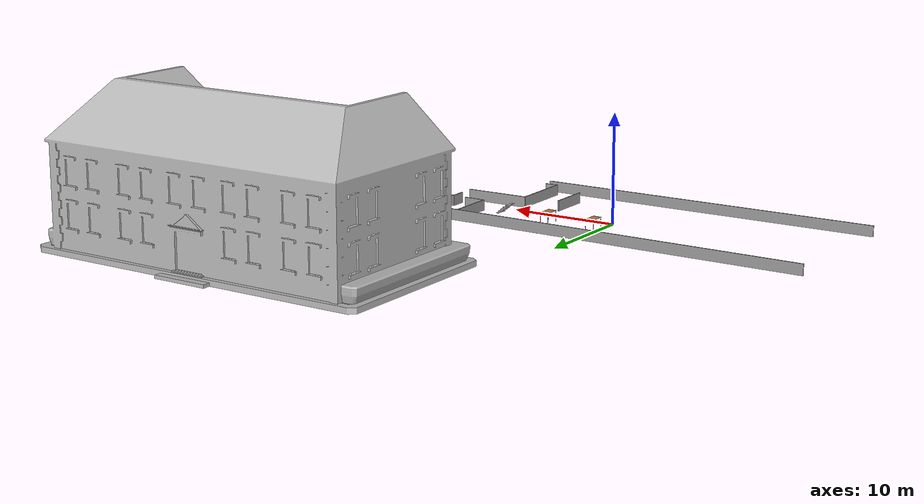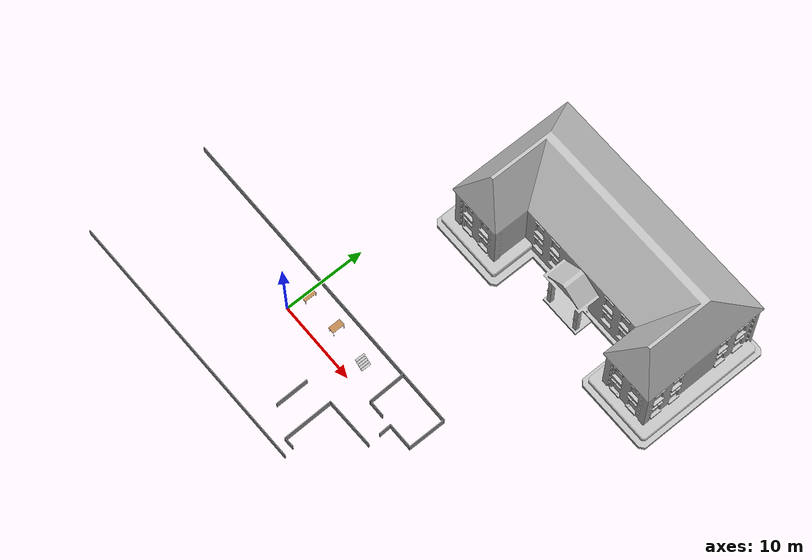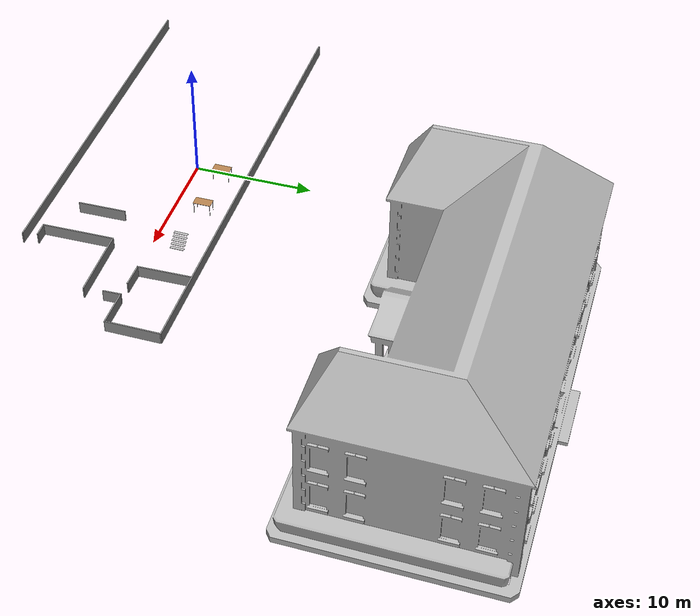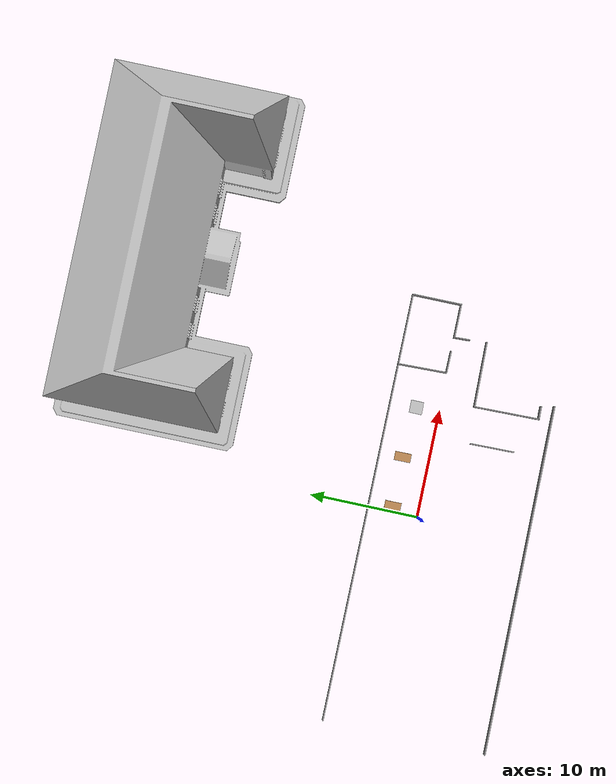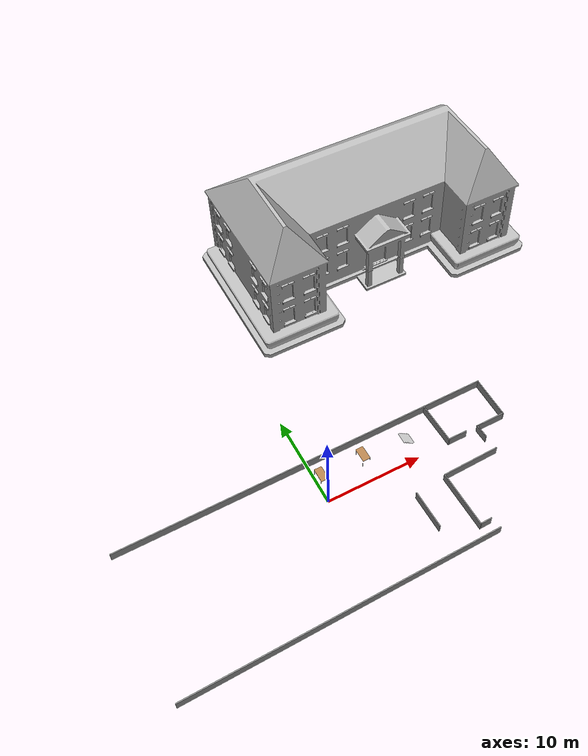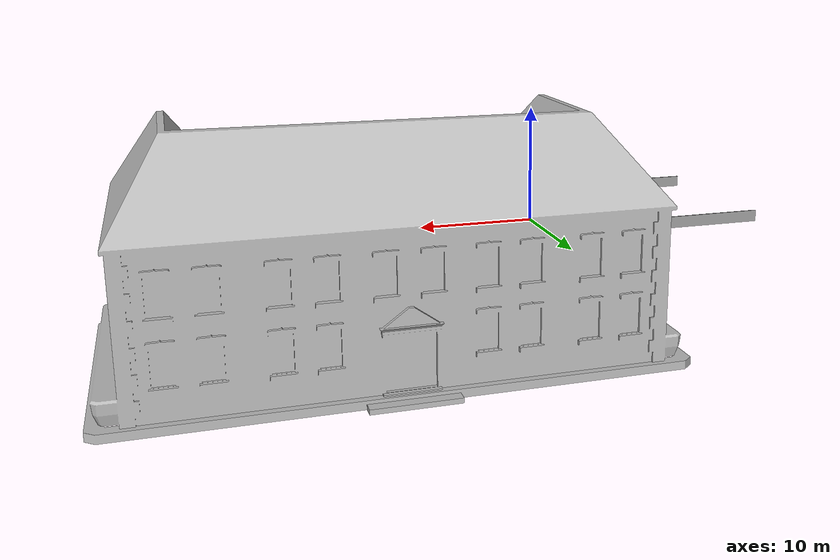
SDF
<sdf version="1.6">
 <model name="big_project_room">
  <link name="link">
   <pose>14.0349 -2.99213 2.5e-05 0 -0 0.019261</pose>
   <inertial>
    <mass>0.0501598</mass>
    <inertia>
     <ixx>0.00418042</ixx>
     <ixy>0</ixy>
     <ixz>0</ixz>
     <iyy>0.104263</iyy>
     <iyz>0</iyz>
     <izz>0.100083</izz>
    </inertia>
   </inertial>
   <visual name="visual">
    <geometry><box><size>6.096 0.10251 1</size></box></geometry>
    <material>
     <script><name>Gazebo/Grey</name><uri>file://media/materials/scripts/gazebo.material</uri></script>
     <shader type="pixel"><normal_map>__default__</normal_map></shader>
     <ambient>1 1 1 1</ambient>
     <diffuse>0.7 0.7 0.7 1</diffuse>
     <specular>0.01 0.01 0.01 1</specular>
     <emissive>0 0 0 1</emissive>
    </material>
   </visual>
   <collision name="collision">
    <geometry><box><size>6.096 0.10251 1</size></box></geometry>
    <surface>
     <friction>
      <ode><mu>1</mu><mu2>1</mu2><fdir1>0 0 0</fdir1><slip1>0</slip1><slip2>0</slip2></ode>
      <torsional>
       <coefficient>1</coefficient>
       <patch_radius>0</patch_radius>
       <surface_radius>0</surface_radius>
       <use_patch_radius>1</use_patch_radius>
       <ode><slip>0</slip></ode>
      </torsional>
     </friction>
     <bounce><restitution_coefficient>0</restitution_coefficient><threshold>1e+06</threshold></bounce>
     <contact>
      <collide_without_contact>0</collide_without_contact>
      <collide_without_contact_bitmask>1</collide_without_contact_bitmask>
      <collide_bitmask>1</collide_bitmask>
      <ode>
       <soft_cfm>0</soft_cfm>
       <soft_erp>0.2</soft_erp>
       <kp>1e+13</kp>
       <kd>1</kd>
       <max_vel>0.01</max_vel>
       <min_depth>0</min_depth>
      </ode>
      <bullet>
       <split_impulse>1</split_impulse>
       <split_impulse_penetration_threshold>-0.01</split_impulse_penetration_threshold>
       <soft_cfm>0</soft_cfm>
       <soft_erp>0.2</soft_erp>
       <kp>1e+13</kp>
       <kd>1</kd>
      </bullet>
     </contact>
    </surface>
   </collision>
  </link>
  <link name="link_0_clone">
   <pose>19.9441 2.29599 -0.01875 0.00066 0.00066 -1.57077</pose>
   <inertial>
    <mass>1</mass>
    <inertia>
     <ixx>0.166667</ixx>
     <ixy>0</ixy>
     <ixz>0</ixz>
     <iyy>0.166667</iyy>
     <iyz>0</iyz>
     <izz>0.166667</izz>
    </inertia>
   </inertial>
   <visual name="visual">
    <geometry><box><size>4.527 0.1 1</size></box></geometry>
    <material>
     <lighting>1</lighting>
     <script><uri>file://media/materials/scripts/gazebo.material</uri><name>Gazebo/Grey</name></script>
     <shader type="pixel"><normal_map>__default__</normal_map></shader>
     <ambient>1 1 1 1</ambient>
     <diffuse>0.7 0.7 0.7 1</diffuse>
     <specular>0.01 0.01 0.01 1</specular>
     <emissive>0 0 0 1</emissive>
    </material>
   </visual>
   <collision name="collision">
    <geometry><box><size>4.572 0.1 1</size></box></geometry>
    <surface>
     <friction>
      <ode><mu>1</mu><mu2>1</mu2><fdir1>0 0 0</fdir1><slip1>0</slip1><slip2>0</slip2></ode>
      <torsional>
       <coefficient>1</coefficient>
       <patch_radius>0</patch_radius>
       <surface_radius>0</surface_radius>
       <use_patch_radius>1</use_patch_radius>
       <ode><slip>0</slip></ode>
      </torsional>
     </friction>
     <bounce><restitution_coefficient>0</restitution_coefficient><threshold>1e+06</threshold></bounce>
     <contact>
      <collide_without_contact>0</collide_without_contact>
      <collide_without_contact_bitmask>1</collide_without_contact_bitmask>
      <collide_bitmask>1</collide_bitmask>
      <ode>
       <soft_cfm>0</soft_cfm>
       <soft_erp>0.2</soft_erp>
       <kp>1e+13</kp>
       <kd>1</kd>
       <max_vel>0.01</max_vel>
       <min_depth>0</min_depth>
      </ode>
      <bullet>
       <split_impulse>1</split_impulse>
       <split_impulse_penetration_threshold>-0.01</split_impulse_penetration_threshold>
       <soft_cfm>0</soft_cfm>
       <soft_erp>0.2</soft_erp>
       <kp>1e+13</kp>
       <kd>1</kd>
      </bullet>
     </contact>
    </surface>
   </collision>
  </link>
  <link name="link_0_clone_clone_clone_0">
   <pose>14.5732 0.114647 0.004935 -0.000664 0.000656 3.13495</pose>
   <inertial>
    <mass>1</mass>
    <inertia>
     <ixx>0.166667</ixx>
     <ixy>0</ixy>
     <ixz>0</ixz>
     <iyy>0.166667</iyy>
     <iyz>0</iyz>
     <izz>0.166667</izz>
    </inertia>
   </inertial>
   <visual name="visual">
    <geometry><box><size>2 0.1 1</size></box></geometry>
    <material>
     <lighting>1</lighting>
     <script><uri>file://media/materials/scripts/gazebo.material</uri><name>Gazebo/Grey</name></script>
     <shader type="pixel"><normal_map>__default__</normal_map></shader>
     <ambient>1 1 1 1</ambient>
     <diffuse>0.7 0.7 0.7 1</diffuse>
     <specular>0.01 0.01 0.01 1</specular>
     <emissive>0 0 0 1</emissive>
    </material>
   </visual>
   <collision name="collision">
    <geometry><box><size>2 0.1 1</size></box></geometry>
    <surface>
     <friction>
      <ode><mu>1</mu><mu2>1</mu2><fdir1>0 0 0</fdir1><slip1>0</slip1><slip2>0</slip2></ode>
      <torsional>
       <coefficient>1</coefficient>
       <patch_radius>0</patch_radius>
       <surface_radius>0</surface_radius>
       <use_patch_radius>1</use_patch_radius>
       <ode><slip>0</slip></ode>
      </torsional>
     </friction>
     <bounce><restitution_coefficient>0</restitution_coefficient><threshold>1e+06</threshold></bounce>
     <contact>
      <collide_without_contact>0</collide_without_contact>
      <collide_without_contact_bitmask>1</collide_without_contact_bitmask>
      <collide_bitmask>1</collide_bitmask>
      <ode>
       <soft_cfm>0</soft_cfm>
       <soft_erp>0.2</soft_erp>
       <kp>1e+13</kp>
       <kd>1</kd>
       <max_vel>0.01</max_vel>
       <min_depth>0</min_depth>
      </ode>
      <bullet>
       <split_impulse>1</split_impulse>
       <split_impulse_penetration_threshold>-0.01</split_impulse_penetration_threshold>
       <soft_cfm>0</soft_cfm>
       <soft_erp>0.2</soft_erp>
       <kp>1e+13</kp>
       <kd>1</kd>
      </bullet>
     </contact>
    </surface>
   </collision>
  </link>
  <link name="link_0_clone_clone_clone_clone_0">
   <pose>16.8828 -0.632141 0.009219 -0.000709 -0.001294 1.60824</pose>
   <inertial>
    <mass>1</mass>
    <inertia>
     <ixx>0.166667</ixx>
     <ixy>0</ixy>
     <ixz>0</ixz>
     <iyy>0.166667</iyy>
     <iyz>0</iyz>
     <izz>0.166667</izz>
    </inertia>
   </inertial>
   <visual name="visual">
    <geometry><box><size>1.524 0.1 1</size></box></geometry>
    <material>
     <lighting>1</lighting>
     <script><uri>file://media/materials/scripts/gazebo.material</uri><name>Gazebo/Grey</name></script>
     <shader type="pixel"><normal_map>__default__</normal_map></shader>
     <ambient>1 1 1 1</ambient>
     <diffuse>0.7 0.7 0.7 1</diffuse>
     <specular>0.01 0.01 0.01 1</specular>
     <emissive>0 0 0 1</emissive>
    </material>
   </visual>
   <collision name="collision">
    <geometry><box><size>1.524 0.1 1</size></box></geometry>
    <surface>
     <friction>
      <ode><mu>1</mu><mu2>1</mu2><fdir1>0 0 0</fdir1><slip1>0</slip1><slip2>0</slip2></ode>
      <torsional>
       <coefficient>1</coefficient>
       <patch_radius>0</patch_radius>
       <surface_radius>0</surface_radius>
       <use_patch_radius>1</use_patch_radius>
       <ode><slip>0</slip></ode>
      </torsional>
     </friction>
     <bounce><restitution_coefficient>0</restitution_coefficient><threshold>1e+06</threshold></bounce>
     <contact>
      <collide_without_contact>0</collide_without_contact>
      <collide_without_contact_bitmask>1</collide_without_contact_bitmask>
      <collide_bitmask>1</collide_bitmask>
      <ode>
       <soft_cfm>0</soft_cfm>
       <soft_erp>0.2</soft_erp>
       <kp>1e+13</kp>
       <kd>1</kd>
       <max_vel>0.01</max_vel>
       <min_depth>0</min_depth>
      </ode>
      <bullet>
       <split_impulse>1</split_impulse>
       <split_impulse_penetration_threshold>-0.01</split_impulse_penetration_threshold>
       <soft_cfm>0</soft_cfm>
       <soft_erp>0.2</soft_erp>
       <kp>1e+13</kp>
       <kd>1</kd>
      </bullet>
     </contact>
    </surface>
   </collision>
  </link>
  <link name="link_0_clone_clone_clone_clone_1">
   <pose>18.3965 0.082315 0.010039 -0.001319 0.000662 -3.14011</pose>
   <inertial>
    <mass>1</mass>
    <inertia>
     <ixx>0.166667</ixx>
     <ixy>0</ixy>
     <ixz>0</ixz>
     <iyy>0.166667</iyy>
     <iyz>0</iyz>
     <izz>0.166667</izz>
    </inertia>
   </inertial>
   <visual name="visual">
    <geometry><box><size>3 0.1 1</size></box></geometry>
    <material>
     <lighting>1</lighting>
     <script><uri>file://media/materials/scripts/gazebo.material</uri><name>Gazebo/Grey</name></script>
     <shader type="pixel"><normal_map>__default__</normal_map></shader>
     <ambient>1 1 1 1</ambient>
     <diffuse>0.7 0.7 0.7 1</diffuse>
     <specular>0.01 0.01 0.01 1</specular>
     <emissive>0 0 0 1</emissive>
    </material>
   </visual>
   <collision name="collision">
    <geometry><box><size>3 0.1 1</size></box></geometry>
    <surface>
     <friction>
      <ode><mu>1</mu><mu2>1</mu2><fdir1>0 0 0</fdir1><slip1>0</slip1><slip2>0</slip2></ode>
      <torsional>
       <coefficient>1</coefficient>
       <patch_radius>0</patch_radius>
       <surface_radius>0</surface_radius>
       <use_patch_radius>1</use_patch_radius>
       <ode><slip>0</slip></ode>
      </torsional>
     </friction>
     <bounce><restitution_coefficient>0</restitution_coefficient><threshold>1e+06</threshold></bounce>
     <contact>
      <collide_without_contact>0</collide_without_contact>
      <collide_without_contact_bitmask>1</collide_without_contact_bitmask>
      <collide_bitmask>1</collide_bitmask>
      <ode>
       <soft_cfm>0</soft_cfm>
       <soft_erp>0.2</soft_erp>
       <kp>1e+13</kp>
       <kd>1</kd>
       <max_vel>0.01</max_vel>
       <min_depth>0</min_depth>
      </ode>
      <bullet>
       <split_impulse>1</split_impulse>
       <split_impulse_penetration_threshold>-0.01</split_impulse_penetration_threshold>
       <soft_cfm>0</soft_cfm>
       <soft_erp>0.2</soft_erp>
       <kp>1e+13</kp>
       <kd>1</kd>
      </bullet>
     </contact>
    </surface>
   </collision>
  </link>
  <link name="link_clone">
   <pose>-0.007377 4.60801 0.003041 0.00066 -0 0</pose>
   <inertial>
    <mass>0.0501598</mass>
    <inertia>
     <ixx>0.00418042</ixx>
     <ixy>0</ixy>
     <ixz>0</ixz>
     <iyy>0.104263</iyy>
     <iyz>0</iyz>
     <izz>0.100083</izz>
    </inertia>
   </inertial>
   <visual name="visual">
    <geometry><box><size>40 0.10251 1</size></box></geometry>
    <material>
     <script><name>Gazebo/Grey</name><uri>file://media/materials/scripts/gazebo.material</uri></script>
     <shader type="pixel"><normal_map>__default__</normal_map></shader>
     <ambient>1 1 1 1</ambient>
     <diffuse>0.7 0.7 0.7 1</diffuse>
     <specular>0.01 0.01 0.01 1</specular>
     <emissive>0 0 0 1</emissive>
    </material>
   </visual>
   <collision name="collision">
    <geometry><box><size>40 0.10251 1</size></box></geometry>
    <surface>
     <friction>
      <ode><mu>1</mu><mu2>1</mu2><fdir1>0 0 0</fdir1><slip1>0</slip1><slip2>0</slip2></ode>
      <torsional>
       <coefficient>1</coefficient>
       <patch_radius>0</patch_radius>
       <surface_radius>0</surface_radius>
       <use_patch_radius>1</use_patch_radius>
       <ode><slip>0</slip></ode>
      </torsional>
     </friction>
     <bounce><restitution_coefficient>0</restitution_coefficient><threshold>1e+06</threshold></bounce>
     <contact>
      <collide_without_contact>0</collide_without_contact>
      <collide_without_contact_bitmask>1</collide_without_contact_bitmask>
      <collide_bitmask>1</collide_bitmask>
      <ode>
       <soft_cfm>0</soft_cfm>
       <soft_erp>0.2</soft_erp>
       <kp>1e+13</kp>
       <kd>1</kd>
       <max_vel>0.01</max_vel>
       <min_depth>0</min_depth>
      </ode>
      <bullet>
       <split_impulse>1</split_impulse>
       <split_impulse_penetration_threshold>-0.01</split_impulse_penetration_threshold>
       <soft_cfm>0</soft_cfm>
       <soft_erp>0.2</soft_erp>
       <kp>1e+13</kp>
       <kd>1</kd>
      </bullet>
     </contact>
    </surface>
   </collision>
  </link>
  <link name="link_clone_0">
   <pose>13.4826 2.33415 0.001565 1.7e-05 0.00066 -1.54442</pose>
   <inertial>
    <mass>0.0373227</mass>
    <inertia>
     <ixx>0.00314291</ixx>
     <ixy>0</ixy>
     <ixz>0</ixz>
     <iyy>0.067101</iyy>
     <iyz>0</iyz>
     <izz>0.0640235</izz>
    </inertia>
   </inertial>
   <visual name="visual">
    <geometry><box><size>4.53589 0.10251 1</size></box></geometry>
    <material>
     <script><name>Gazebo/Grey</name><uri>file://media/materials/scripts/gazebo.material</uri></script>
     <shader type="pixel"><normal_map>__default__</normal_map></shader>
     <ambient>1 1 1 1</ambient>
     <diffuse>0.7 0.7 0.7 1</diffuse>
     <specular>0.01 0.01 0.01 1</specular>
     <emissive>0 0 0 1</emissive>
    </material>
   </visual>
   <collision name="collision">
    <geometry><box><size>4.53589 0.10251 1</size></box></geometry>
    <surface>
     <friction>
      <ode><mu>1</mu><mu2>1</mu2><fdir1>0 0 0</fdir1><slip1>0</slip1><slip2>0</slip2></ode>
      <torsional>
       <coefficient>1</coefficient>
       <patch_radius>0</patch_radius>
       <surface_radius>0</surface_radius>
       <use_patch_radius>1</use_patch_radius>
       <ode><slip>0</slip></ode>
      </torsional>
     </friction>
     <bounce><restitution_coefficient>0</restitution_coefficient><threshold>1e+06</threshold></bounce>
     <contact>
      <collide_without_contact>0</collide_without_contact>
      <collide_without_contact_bitmask>1</collide_without_contact_bitmask>
      <collide_bitmask>1</collide_bitmask>
      <ode>
       <soft_cfm>0</soft_cfm>
       <soft_erp>0.2</soft_erp>
       <kp>1e+13</kp>
       <kd>1</kd>
       <max_vel>0.01</max_vel>
       <min_depth>0</min_depth>
      </ode>
      <bullet>
       <split_impulse>1</split_impulse>
       <split_impulse_penetration_threshold>-0.01</split_impulse_penetration_threshold>
       <soft_cfm>0</soft_cfm>
       <soft_erp>0.2</soft_erp>
       <kp>1e+13</kp>
       <kd>1</kd>
      </bullet>
     </contact>
    </surface>
   </collision>
  </link>
  <link name="link_clone_1">
   <pose>11.064 -6.05479 -0.003971 1.2e-05 0.00066 -1.55284</pose>
   <inertial>
    <mass>0.0501598</mass>
    <inertia>
     <ixx>0.00418042</ixx>
     <ixy>0</ixy>
     <ixz>0</ixz>
     <iyy>0.104263</iyy>
     <iyz>0</iyz>
     <izz>0.100083</izz>
    </inertia>
   </inertial>
   <visual name="visual">
    <geometry><box><size>6.096 0.10251 1</size></box></geometry>
    <material>
     <script><name>Gazebo/Grey</name><uri>file://media/materials/scripts/gazebo.material</uri></script>
     <shader type="pixel"><normal_map>__default__</normal_map></shader>
     <ambient>1 1 1 1</ambient>
     <diffuse>0.7 0.7 0.7 1</diffuse>
     <specular>0.01 0.01 0.01 1</specular>
     <emissive>0 0 0 1</emissive>
    </material>
   </visual>
   <collision name="collision">
    <geometry><box><size>6.096 0.10251 1</size></box></geometry>
    <surface>
     <friction>
      <ode><mu>1</mu><mu2>1</mu2><fdir1>0 0 0</fdir1><slip1>0</slip1><slip2>0</slip2></ode>
      <torsional>
       <coefficient>1</coefficient>
       <patch_radius>0</patch_radius>
       <surface_radius>0</surface_radius>
       <use_patch_radius>1</use_patch_radius>
       <ode><slip>0</slip></ode>
      </torsional>
     </friction>
     <bounce><restitution_coefficient>0</restitution_coefficient><threshold>1e+06</threshold></bounce>
     <contact>
      <collide_without_contact>0</collide_without_contact>
      <collide_without_contact_bitmask>1</collide_without_contact_bitmask>
      <collide_bitmask>1</collide_bitmask>
      <ode>
       <soft_cfm>0</soft_cfm>
       <soft_erp>0.2</soft_erp>
       <kp>1e+13</kp>
       <kd>1</kd>
       <max_vel>0.01</max_vel>
       <min_depth>0</min_depth>
      </ode>
      <bullet>
       <split_impulse>1</split_impulse>
       <split_impulse_penetration_threshold>-0.01</split_impulse_penetration_threshold>
       <soft_cfm>0</soft_cfm>
       <soft_erp>0.2</soft_erp>
       <kp>1e+13</kp>
       <kd>1</kd>
      </bullet>
     </contact>
    </surface>
   </collision>
  </link>
  <link name="link_clone_1_clone">
   <pose>-3.72157 -10.3844 -0.010858 -0.00132 1.3e-05 -3.13177</pose>
   <inertial>
    <mass>0.268169</mass>
    <inertia>
     <ixx>0.0225823</ixx>
     <ixy>0</ixy>
     <ixz>0</ixz>
     <iyy>23.7593</iyy>
     <iyz>0</iyz>
     <izz>23.7372</izz>
    </inertia>
   </inertial>
   <visual name="visual">
    <geometry><box><size>32.5911 0.10251 1</size></box></geometry>
    <material>
     <script><name>Gazebo/Grey</name><uri>file://media/materials/scripts/gazebo.material</uri></script>
     <shader type="pixel"><normal_map>__default__</normal_map></shader>
     <ambient>1 1 1 1</ambient>
     <diffuse>0.7 0.7 0.7 1</diffuse>
     <specular>0.01 0.01 0.01 1</specular>
     <emissive>0 0 0 1</emissive>
    </material>
   </visual>
   <collision name="collision">
    <geometry><box><size>32.5911 0.10251 1</size></box></geometry>
    <surface>
     <friction>
      <ode><mu>1</mu><mu2>1</mu2><fdir1>0 0 0</fdir1><slip1>0</slip1><slip2>0</slip2></ode>
      <torsional>
       <coefficient>1</coefficient>
       <patch_radius>0</patch_radius>
       <surface_radius>0</surface_radius>
       <use_patch_radius>1</use_patch_radius>
       <ode><slip>0</slip></ode>
      </torsional>
     </friction>
     <bounce><restitution_coefficient>0</restitution_coefficient><threshold>1e+06</threshold></bounce>
     <contact>
      <collide_without_contact>0</collide_without_contact>
      <collide_without_contact_bitmask>1</collide_without_contact_bitmask>
      <collide_bitmask>1</collide_bitmask>
      <ode>
       <soft_cfm>0</soft_cfm>
       <soft_erp>0.2</soft_erp>
       <kp>1e+13</kp>
       <kd>1</kd>
       <max_vel>0.01</max_vel>
       <min_depth>0</min_depth>
      </ode>
      <bullet>
       <split_impulse>1</split_impulse>
       <split_impulse_penetration_threshold>-0.01</split_impulse_penetration_threshold>
       <soft_cfm>0</soft_cfm>
       <soft_erp>0.2</soft_erp>
       <kp>1e+13</kp>
       <kd>1</kd>
      </bullet>
     </contact>
    </surface>
   </collision>
  </link>
  <link name="link_clone_1_clone_0">
   <pose>11.726 -9.03721 -0.009925 -0.00132 2.9e-05 -3.11953</pose>
   <inertial>
    <mass>0.00975708</mass>
    <inertia>
     <ixx>0.000821634</ixx>
     <ixy>0</ixy>
     <ixz>0</ixz>
     <iyy>0.00195639</iyy>
     <iyz>0</iyz>
     <izz>0.00115184</izz>
    </inertia>
   </inertial>
   <visual name="visual">
    <geometry><box><size>1.1858 0.10251 1</size></box></geometry>
    <material>
     <script><name>Gazebo/Grey</name><uri>file://media/materials/scripts/gazebo.material</uri></script>
     <shader type="pixel"><normal_map>__default__</normal_map></shader>
     <ambient>1 1 1 1</ambient>
     <diffuse>0.7 0.7 0.7 1</diffuse>
     <specular>0.01 0.01 0.01 1</specular>
     <emissive>0 0 0 1</emissive>
    </material>
   </visual>
   <collision name="collision">
    <geometry><box><size>1.1858 0.10251 1</size></box></geometry>
    <surface>
     <friction>
      <ode><mu>1</mu><mu2>1</mu2><fdir1>0 0 0</fdir1><slip1>0</slip1><slip2>0</slip2></ode>
      <torsional>
       <coefficient>1</coefficient>
       <patch_radius>0</patch_radius>
       <surface_radius>0</surface_radius>
       <use_patch_radius>1</use_patch_radius>
       <ode><slip>0</slip></ode>
      </torsional>
     </friction>
     <bounce><restitution_coefficient>0</restitution_coefficient><threshold>1e+06</threshold></bounce>
     <contact>
      <collide_without_contact>0</collide_without_contact>
      <collide_without_contact_bitmask>1</collide_without_contact_bitmask>
      <collide_bitmask>1</collide_bitmask>
      <ode>
       <soft_cfm>0</soft_cfm>
       <soft_erp>0.2</soft_erp>
       <kp>1e+13</kp>
       <kd>1</kd>
       <max_vel>0.01</max_vel>
       <min_depth>0</min_depth>
      </ode>
      <bullet>
       <split_impulse>1</split_impulse>
       <split_impulse_penetration_threshold>-0.01</split_impulse_penetration_threshold>
       <soft_cfm>0</soft_cfm>
       <soft_erp>0.2</soft_erp>
       <kp>1e+13</kp>
       <kd>1</kd>
      </bullet>
     </contact>
    </surface>
   </collision>
  </link>
  <link name="link_clone_1_clone_2_clone_3">
   <pose>7.65066 -5.4273 -0.006926 3e-05 0.00198 -1.55514</pose>
   <inertial>
    <mass>0.033243</mass>
    <inertia>
     <ixx>0.00279936</ixx>
     <ixy>0</ixy>
     <ixz>0</ixz>
     <iyy>0.047987</iyy>
     <iyz>0</iyz>
     <izz>0.0452459</izz>
    </inertia>
   </inertial>
   <visual name="visual">
    <geometry><box><size>4.04008 0.10251 1</size></box></geometry>
    <material>
     <script><name>Gazebo/Grey</name><uri>file://media/materials/scripts/gazebo.material</uri></script>
     <shader type="pixel"><normal_map>__default__</normal_map></shader>
     <ambient>1 1 1 1</ambient>
     <diffuse>0.7 0.7 0.7 1</diffuse>
     <specular>0.01 0.01 0.01 1</specular>
     <emissive>0 0 0 1</emissive>
    </material>
   </visual>
   <collision name="collision">
    <geometry><box><size>4.04008 0.10251 1</size></box></geometry>
    <surface>
     <friction>
      <ode><mu>1</mu><mu2>1</mu2><fdir1>0 0 0</fdir1><slip1>0</slip1><slip2>0</slip2></ode>
      <torsional>
       <coefficient>1</coefficient>
       <patch_radius>0</patch_radius>
       <surface_radius>0</surface_radius>
       <use_patch_radius>1</use_patch_radius>
       <ode><slip>0</slip></ode>
      </torsional>
     </friction>
     <bounce><restitution_coefficient>0</restitution_coefficient><threshold>1e+06</threshold></bounce>
     <contact>
      <collide_without_contact>0</collide_without_contact>
      <collide_without_contact_bitmask>1</collide_without_contact_bitmask>
      <collide_bitmask>1</collide_bitmask>
      <ode>
       <soft_cfm>0</soft_cfm>
       <soft_erp>0.2</soft_erp>
       <kp>1e+13</kp>
       <kd>1</kd>
       <max_vel>0.01</max_vel>
       <min_depth>0</min_depth>
      </ode>
      <bullet>
       <split_impulse>1</split_impulse>
       <split_impulse_penetration_threshold>-0.01</split_impulse_penetration_threshold>
       <soft_cfm>0</soft_cfm>
       <soft_erp>0.2</soft_erp>
       <kp>1e+13</kp>
       <kd>1</kd>
      </bullet>
     </contact>
    </surface>
   </collision>
  </link>
  <model name="nist_stairs_120">
   <static>1</static>
   <link name="nist_stairs_120_link">
    <collision name="collision">
     <geometry>
      <mesh><uri>model://nist_stairs_120/meshes/nist_stairs_120.dae</uri><scale>1 1 1</scale></mesh>
     </geometry>
    </collision>
    <visual name="visual">
     <geometry>
      <mesh><uri>model://nist_stairs_120/meshes/nist_stairs_120.dae</uri><scale>1 1 1</scale></mesh>
     </geometry>
    </visual>
   </link>
   <pose>9.85637 2.17467 0.001435 0 0 1.55002</pose>
  </model>
  <model name="school">
   <static>1</static>
   <link name="link">
    <collision name="collision">
     <geometry><mesh><uri>model://school/meshes/school.dae</uri></mesh></geometry>
    </collision>
    <visual name="visual"><geometry><mesh><uri>model://school/meshes/school.dae</uri></mesh></geometry></visual>
   </link>
   <pose>18.8365 29.0248 0.019156 0 -0 0</pose>
  </model>
  <model name="table">
   <static>1</static>
   <link name="link">
    <collision name="surface">
     <pose>0 0 1 0 -0 0</pose>
     <geometry><box><size>1.5 0.8 0.03</size></box></geometry>
     <surface><friction><ode><mu>0.6</mu><mu2>0.6</mu2></ode></friction></surface>
    </collision>
    <visual name="visual1">
     <pose>0 0 1 0 -0 0</pose>
     <geometry><box><size>1.5 0.8 0.03</size></box></geometry>
     <material>
      <script><uri>file://media/materials/scripts/gazebo.material</uri><name>Gazebo/Wood</name></script>
     </material>
    </visual>
    <collision name="front_left_leg">
     <pose>0.68 0.38 0.5 0 -0 0</pose>
     <geometry><cylinder><radius>0.02</radius><length>1</length></cylinder></geometry>
    </collision>
    <visual name="front_left_leg">
     <pose>0.68 0.38 0.5 0 -0 0</pose>
     <geometry><cylinder><radius>0.02</radius><length>1</length></cylinder></geometry>
     <material>
      <script><uri>file://media/materials/scripts/gazebo.material</uri><name>Gazebo/Grey</name></script>
     </material>
    </visual>
    <collision name="front_right_leg">
     <pose>0.68 -0.38 0.5 0 -0 0</pose>
     <geometry><cylinder><radius>0.02</radius><length>1</length></cylinder></geometry>
    </collision>
    <visual name="front_right_leg">
     <pose>0.68 -0.38 0.5 0 -0 0</pose>
     <geometry><cylinder><radius>0.02</radius><length>1</length></cylinder></geometry>
     <material>
      <script><uri>file://media/materials/scripts/gazebo.material</uri><name>Gazebo/Grey</name></script>
     </material>
    </visual>
    <collision name="back_right_leg">
     <pose>-0.68 -0.38 0.5 0 -0 0</pose>
     <geometry><cylinder><radius>0.02</radius><length>1</length></cylinder></geometry>
    </collision>
    <visual name="back_right_leg">
     <pose>-0.68 -0.38 0.5 0 -0 0</pose>
     <geometry><cylinder><radius>0.02</radius><length>1</length></cylinder></geometry>
     <material>
      <script><uri>file://media/materials/scripts/gazebo.material</uri><name>Gazebo/Grey</name></script>
     </material>
    </visual>
    <collision name="back_left_leg">
     <pose>-0.68 0.38 0.5 0 -0 0</pose>
     <geometry><cylinder><radius>0.02</radius><length>1</length></cylinder></geometry>
    </collision>
    <visual name="back_left_leg">
     <pose>-0.68 0.38 0.5 0 -0 0</pose>
     <geometry><cylinder><radius>0.02</radius><length>1</length></cylinder></geometry>
     <material>
      <script><uri>file://media/materials/scripts/gazebo.material</uri><name>Gazebo/Grey</name></script>
     </material>
    </visual>
   </link>
   <pose>5.14452 2.47814 0.001636 -0 -0 -1.5639</pose>
  </model>
  <model name="table_0">
   <static>1</static>
   <link name="link">
    <collision name="surface">
     <pose>0 0 1 0 -0 0</pose>
     <geometry><box><size>1.5 0.8 0.03</size></box></geometry>
     <surface><friction><ode><mu>0.6</mu><mu2>0.6</mu2></ode></friction></surface>
    </collision>
    <visual name="visual1">
     <pose>0 0 1 0 -0 0</pose>
     <geometry><box><size>1.5 0.8 0.03</size></box></geometry>
     <material>
      <script><uri>file://media/materials/scripts/gazebo.material</uri><name>Gazebo/Wood</name></script>
     </material>
    </visual>
    <collision name="front_left_leg">
     <pose>0.68 0.38 0.5 0 -0 0</pose>
     <geometry><cylinder><radius>0.02</radius><length>1</length></cylinder></geometry>
    </collision>
    <visual name="front_left_leg">
     <pose>0.68 0.38 0.5 0 -0 0</pose>
     <geometry><cylinder><radius>0.02</radius><length>1</length></cylinder></geometry>
     <material>
      <script><uri>file://media/materials/scripts/gazebo.material</uri><name>Gazebo/Grey</name></script>
     </material>
    </visual>
    <collision name="front_right_leg">
     <pose>0.68 -0.38 0.5 0 -0 0</pose>
     <geometry><cylinder><radius>0.02</radius><length>1</length></cylinder></geometry>
    </collision>
    <visual name="front_right_leg">
     <pose>0.68 -0.38 0.5 0 -0 0</pose>
     <geometry><cylinder><radius>0.02</radius><length>1</length></cylinder></geometry>
     <material>
      <script><uri>file://media/materials/scripts/gazebo.material</uri><name>Gazebo/Grey</name></script>
     </material>
    </visual>
    <collision name="back_right_leg">
     <pose>-0.68 -0.38 0.5 0 -0 0</pose>
     <geometry><cylinder><radius>0.02</radius><length>1</length></cylinder></geometry>
    </collision>
    <visual name="back_right_leg">
     <pose>-0.68 -0.38 0.5 0 -0 0</pose>
     <geometry><cylinder><radius>0.02</radius><length>1</length></cylinder></geometry>
     <material>
      <script><uri>file://media/materials/scripts/gazebo.material</uri><name>Gazebo/Grey</name></script>
     </material>
    </visual>
    <collision name="back_left_leg">
     <pose>-0.68 0.38 0.5 0 -0 0</pose>
     <geometry><cylinder><radius>0.02</radius><length>1</length></cylinder></geometry>
    </collision>
    <visual name="back_left_leg">
     <pose>-0.68 0.38 0.5 0 -0 0</pose>
     <geometry><cylinder><radius>0.02</radius><length>1</length></cylinder></geometry>
     <material>
      <script><uri>file://media/materials/scripts/gazebo.material</uri><name>Gazebo/Grey</name></script>
     </material>
    </visual>
   </link>
   <pose>0.573029 2.45176 0.001618 -0 -0 -1.56596</pose>
  </model>
  <static>1</static>
 </model>
</sdf>
